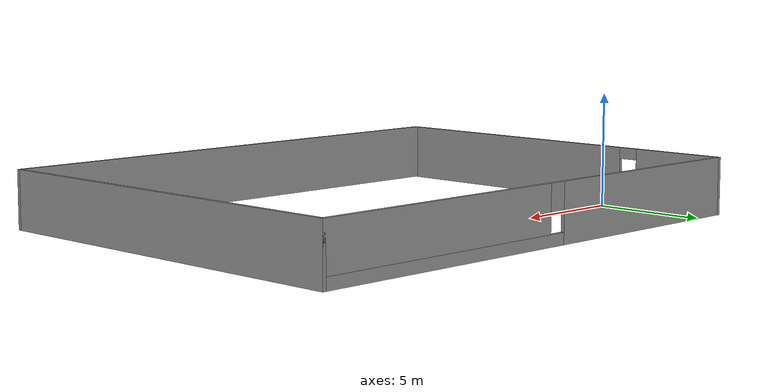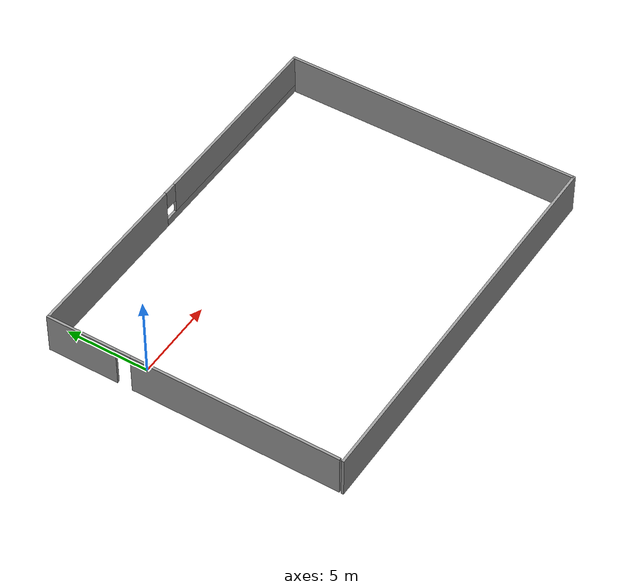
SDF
<?xml version='1.0'?>
<sdf version='1.7'>
  <model name='square_house'>
    <pose>10.2292 -3.89754 0 0 -0 0</pose>
    <link name='Wall_10'>
      <pose>0 8.925 0 0 -0 0</pose>
      <visual name='Wall_10_Visual_0'>
        <pose>-6.42011 0 1.25 0 -0 0</pose>
        <geometry>
          <box>
            <size>10.6598 0.15 2.5</size>
          </box>
        </geometry>
        <material>
          <script>
            <uri>file://media/materials/scripts/gazebo.material</uri>
            <name>Gazebo/Grey</name>
          </script>
          <ambient>1 1 1 1</ambient>
        </material>
        <meta>
          <layer>0</layer>
        </meta>
      </visual>
      <collision name='Wall_10_Collision_0'>
        <geometry>
          <box>
            <size>10.6598 0.15 2.5</size>
          </box>
        </geometry>
        <pose>-6.42011 0 1.25 0 -0 0</pose>
      </collision>
      <visual name='Wall_10_Visual_1'>
        <pose>5.32989 0 0.25 0 -0 0</pose>
        <geometry>
          <box>
            <size>12.8402 0.15 0.5</size>
          </box>
        </geometry>
        <material>
          <script>
            <uri>file://media/materials/scripts/gazebo.material</uri>
            <name>Gazebo/Grey</name>
          </script>
          <ambient>1 1 1 1</ambient>
        </material>
        <meta>
          <layer>0</layer>
        </meta>
      </visual>
      <collision name='Wall_10_Collision_1'>
        <geometry>
          <box>
            <size>12.8402 0.15 0.5</size>
          </box>
        </geometry>
        <pose>5.32989 0 0.25 0 -0 0</pose>
      </collision>
      <visual name='Wall_10_Visual_2'>
        <pose>5.72989 0 1.5 0 -0 0</pose>
        <geometry>
          <box>
            <size>12.0402 0.15 2</size>
          </box>
        </geometry>
        <material>
          <script>
            <uri>file://media/materials/scripts/gazebo.material</uri>
            <name>Gazebo/Grey</name>
          </script>
          <ambient>1 1 1 1</ambient>
        </material>
        <meta>
          <layer>0</layer>
        </meta>
      </visual>
      <collision name='Wall_10_Collision_2'>
        <geometry>
          <box>
            <size>12.0402 0.15 2</size>
          </box>
        </geometry>
        <pose>5.72989 0 1.5 0 -0 0</pose>
      </collision>
      <visual name='Wall_10_Visual_3'>
        <pose>-0.690213 0 1.9 0 -0 0</pose>
        <geometry>
          <box>
            <size>0.8 0.15 1.2</size>
          </box>
        </geometry>
        <material>
          <script>
            <uri>file://media/materials/scripts/gazebo.material</uri>
            <name>Gazebo/Grey</name>
          </script>
          <ambient>1 1 1 1</ambient>
        </material>
        <meta>
          <layer>0</layer>
        </meta>
      </visual>
      <collision name='Wall_10_Collision_3'>
        <geometry>
          <box>
            <size>0.8 0.15 1.2</size>
          </box>
        </geometry>
        <pose>-0.690213 0 1.9 0 -0 0</pose>
      </collision>
    </link>
    <link name='Wall_11'>
      <collision name='Wall_11_Collision'>
        <geometry>
          <box>
            <size>18 0.15 2.5</size>
          </box>
        </geometry>
        <pose>0 0 1.25 0 -0 0</pose>
      </collision>
      <visual name='Wall_11_Visual'>
        <pose>0 0 1.25 0 -0 0</pose>
        <geometry>
          <box>
            <size>18 0.15 2.5</size>
          </box>
        </geometry>
        <material>
          <script>
            <uri>file://media/materials/scripts/gazebo.material</uri>
            <name>Gazebo/Grey</name>
          </script>
          <ambient>1 1 1 1</ambient>
        </material>
        <meta>
          <layer>0</layer>
        </meta>
      </visual>
      <pose>11.675 0 0 0 -0 -1.5708</pose>
    </link>
    <link name='Wall_12'>
      <collision name='Wall_12_Collision'>
        <geometry>
          <box>
            <size>23.5 0.15 2.5</size>
          </box>
        </geometry>
        <pose>0 0 1.25 0 -0 0</pose>
      </collision>
      <visual name='Wall_12_Visual'>
        <pose>0 0 1.25 0 -0 0</pose>
        <geometry>
          <box>
            <size>23.5 0.15 2.5</size>
          </box>
        </geometry>
        <material>
          <script>
            <uri>file://media/materials/scripts/gazebo.material</uri>
            <name>Gazebo/Grey</name>
          </script>
          <ambient>1 1 1 1</ambient>
        </material>
        <meta>
          <layer>0</layer>
        </meta>
      </visual>
      <pose>0 -8.925 0 0 -0 3.14159</pose>
    </link>
    <link name='Wall_9'>
      <pose>-11.675 0.125 0 0 -0 1.5708</pose>
      <visual name='Wall_9_Visual_0'>
        <pose>-2.61332 0 1.25 0 -0 0</pose>
        <geometry>
          <box>
            <size>12.5234 0.15 2.5</size>
          </box>
        </geometry>
        <material>
          <script>
            <uri>file://media/materials/scripts/gazebo.material</uri>
            <name>Gazebo/Grey</name>
          </script>
          <ambient>1 1 1 1</ambient>
        </material>
        <meta>
          <layer>0</layer>
        </meta>
      </visual>
      <collision name='Wall_9_Collision_0'>
        <geometry>
          <box>
            <size>12.5234 0.15 2.5</size>
          </box>
        </geometry>
        <pose>-2.61332 0 1.25 0 -0 0</pose>
      </collision>
      <visual name='Wall_9_Visual_1'>
        <pose>6.71169 0 1.25 0 -0 0</pose>
        <geometry>
          <box>
            <size>4.32663 0.15 2.5</size>
          </box>
        </geometry>
        <material>
          <script>
            <uri>file://media/materials/scripts/gazebo.material</uri>
            <name>Gazebo/Grey</name>
          </script>
          <ambient>1 1 1 1</ambient>
        </material>
        <meta>
          <layer>0</layer>
        </meta>
      </visual>
      <collision name='Wall_9_Collision_1'>
        <geometry>
          <box>
            <size>4.32663 0.15 2.5</size>
          </box>
        </geometry>
        <pose>6.71169 0 1.25 0 -0 0</pose>
      </collision>
      <visual name='Wall_9_Visual_2'>
        <pose>4.09837 0 2.25 0 -0 0</pose>
        <geometry>
          <box>
            <size>0.9 0.15 0.5</size>
          </box>
        </geometry>
        <material>
          <script>
            <uri>file://media/materials/scripts/gazebo.material</uri>
            <name>Gazebo/Grey</name>
          </script>
          <ambient>1 1 1 1</ambient>
        </material>
        <meta>
          <layer>0</layer>
        </meta>
      </visual>
      <collision name='Wall_9_Collision_2'>
        <geometry>
          <box>
            <size>0.9 0.15 0.5</size>
          </box>
        </geometry>
        <pose>4.09837 0 2.25 0 -0 0</pose>
      </collision>
    </link>
    <static>1</static>
  </model>
</sdf>
